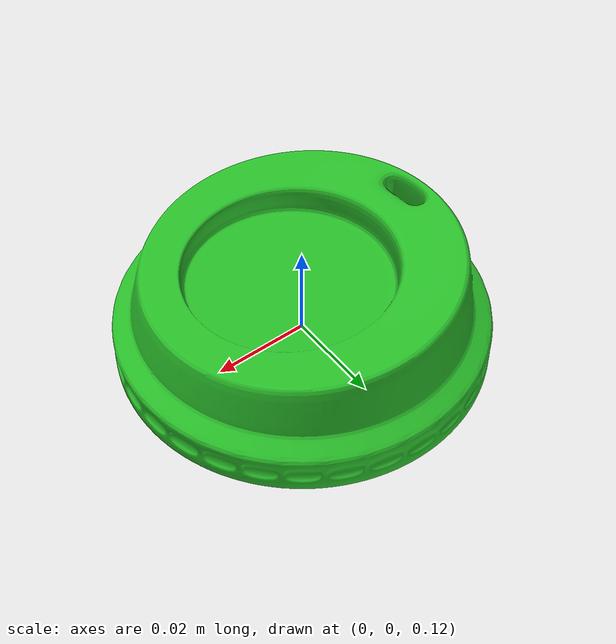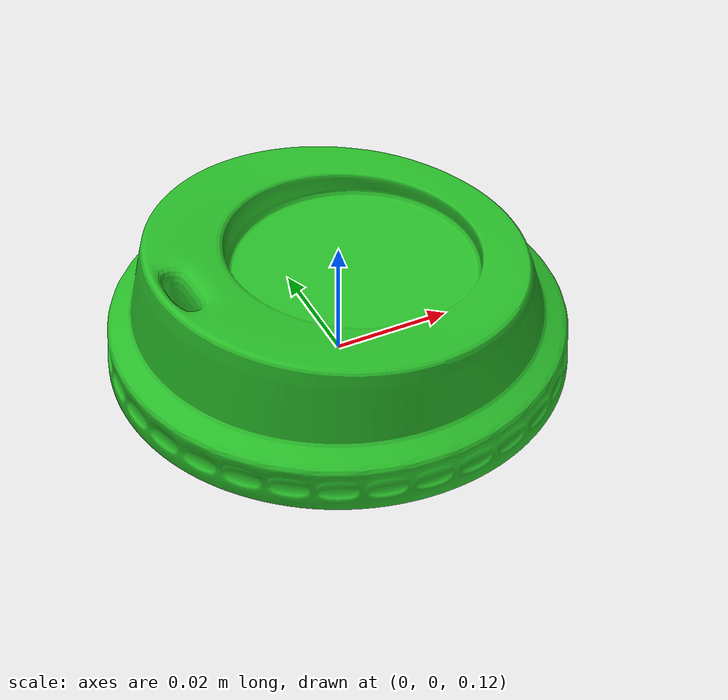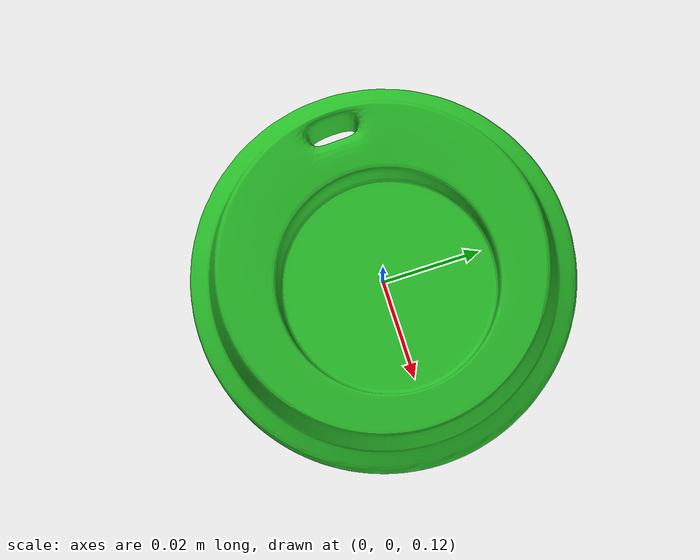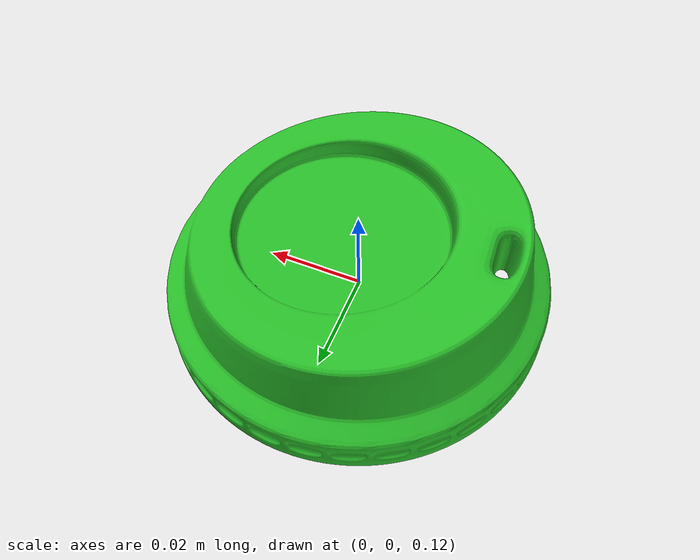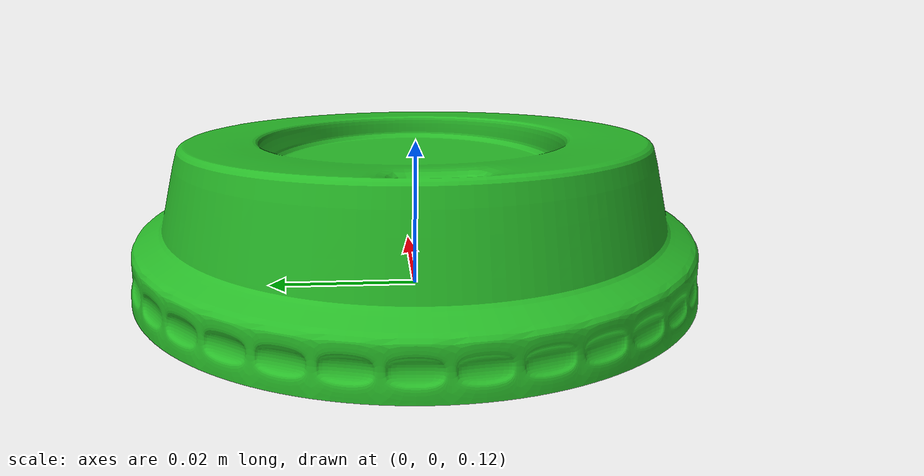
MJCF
<mujoco>
    <asset>
        <mesh name="cuplid_lid" file="cuplid_lid.stl" scale="0.74 0.74 1" />
        <mesh name="cuplid_lid_0_collision" file="cuplid_lid_edge_0.stl" scale="0.64 0.64 1" />
        <mesh name="cuplid_lid_1_collision" file="cuplid_lid_edge_1.stl" scale="0.64 0.64 1" />
        <mesh name="cuplid_lid_2_collision" file="cuplid_lid_edge_2.stl" scale="0.64 0.64 1" />
        <mesh name="cuplid_lid_3_collision" file="cuplid_lid_edge_3.stl" scale="0.64 0.64 1" />
        <mesh name="cuplid_lid_4_collision" file="cuplid_lid_edge_4.stl" scale="0.64 0.64 1" />
        <mesh name="cuplid_lid_5_collision" file="cuplid_lid_edge_5.stl" scale="0.64 0.64 1" />
        <mesh name="cuplid_lid_6_collision" file="cuplid_lid_edge_6.stl" scale="0.64 0.64 1" />
        <mesh name="cuplid_lid_7_collision" file="cuplid_lid_edge_7.stl" scale="0.64 0.64 1" />
    </asset>
    <worldbody>
        <body name="cuplid_lid" pos="0.0 0.0 0.0" quat="1.0 0.0 0.0 0.0">
            <geom type="mesh" name="cuplid_lid" mesh="cuplid_lid" rgba="0.162 0.750 0.164 1" contype="0" conaffinity="0" pos="0 0 -0.007"/>
            <geom name="cuplid_lid_cylinder_collision" type="cylinder" pos="0 0 0.13" size="0.04 0.005" rgba="0 1 0 0" />
            <geom name="cuplid_lid_0_collision" type="mesh" mesh="cuplid_lid_0_collision" pos="0.0 0.0 -0.007" rgba="1 0 0 0" mass="0.001" />
            <geom name="cuplid_lid_1_collision" type="mesh" mesh="cuplid_lid_1_collision" pos="0.0 0.0 -0.007" rgba="1 0 0 0" mass="0.001" />
            <geom name="cuplid_lid_2_collision" type="mesh" mesh="cuplid_lid_2_collision" pos="0.0 0.0 -0.007" rgba="1 0 0 0" mass="0.001" />
            <geom name="cuplid_lid_3_collision" type="mesh" mesh="cuplid_lid_3_collision" pos="0.0 0.0 -0.007" rgba="1 0 0 0" mass="0.001" />
            <geom name="cuplid_lid_4_collision" type="mesh" mesh="cuplid_lid_4_collision" pos="0.0 0.0 -0.007" rgba="1 0 0 0" mass="0.001" />
            <geom name="cuplid_lid_5_collision" type="mesh" mesh="cuplid_lid_5_collision" pos="0.0 0.0 -0.007" rgba="1 0 0 0" mass="0.001" />
            <geom name="cuplid_lid_6_collision" type="mesh" mesh="cuplid_lid_6_collision" pos="0.0 0.0 -0.007" rgba="1 0 0 0" mass="0.001" />
            <geom name="cuplid_lid_7_collision" type="mesh" mesh="cuplid_lid_7_collision" pos="0.0 0.0 -0.007" rgba="1 0 0 0" mass="0.001" />
            <joint name="cuplid_lid_joint" type="free" />
            <inertial pos="0 0 0" mass="0.001" diaginertia="0.002 0.002 0.002" />
        </body>
    </worldbody>

</mujoco>
